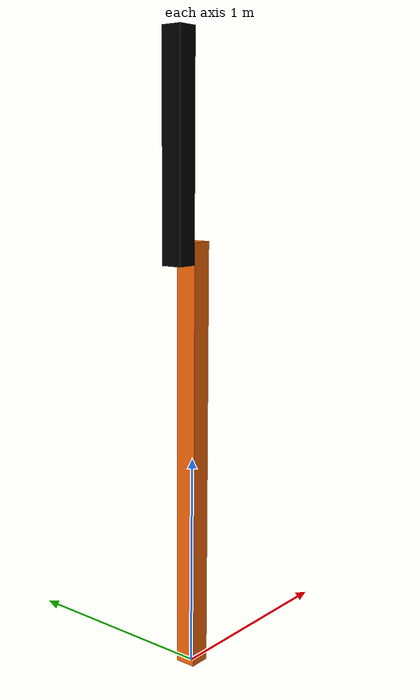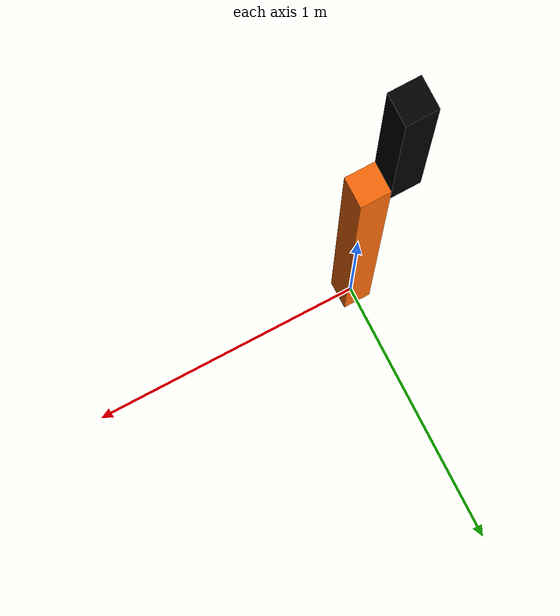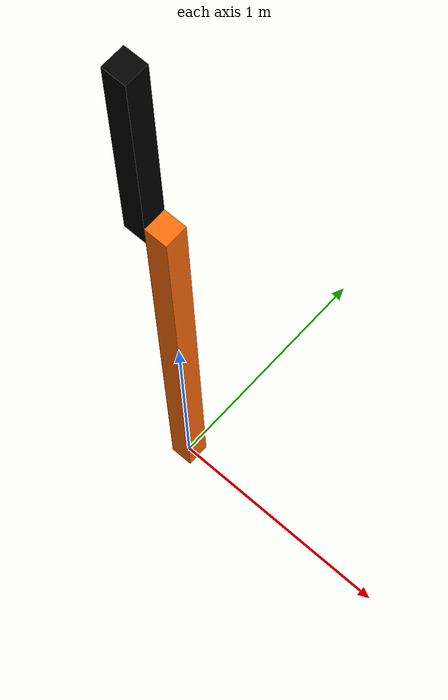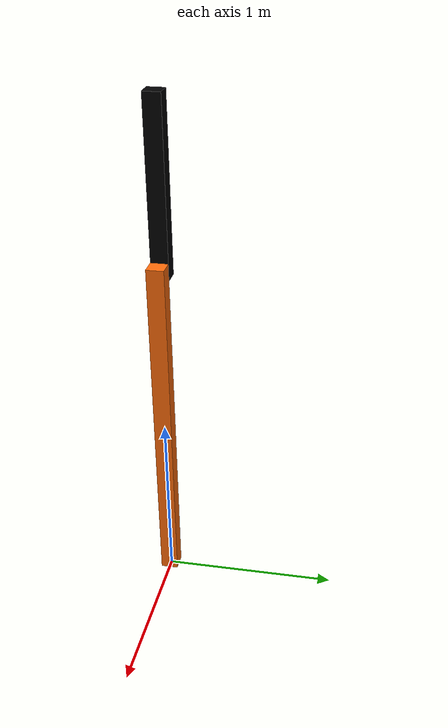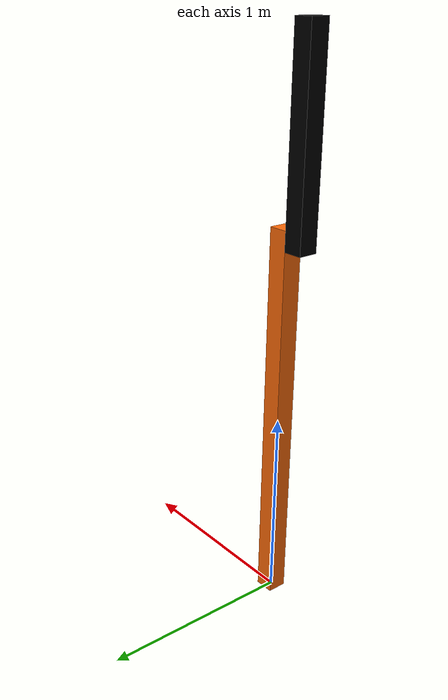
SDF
<?xml version="1.0"?>
<sdf version="1.8">
  <model name='rrbot'>
    <joint name="w2r" type="fixed">
      <parent>world</parent>
      <child>link1</child>
    </joint>
    <link name='link1'>
      <pose>0 0 0 0 -0 1.575</pose>
      <inertial>
        <pose>0 0 1 0 -0 0</pose>
        <mass>1</mass>
        <inertia>
          <ixx>0.334167</ixx>
          <ixy>0</ixy>
          <ixz>0</ixz>
          <iyy>0.334167</iyy>
          <iyz>0</iyz>
          <izz>0.00166667</izz>
        </inertia>
      </inertial>
      <collision name='link1_collision'>
        <pose>0 0 1 0 -0 0</pose>
        <geometry>
          <box>
            <size>0.1 0.1 2</size>
          </box>
        </geometry>
      </collision>
      <visual name='link1_visual'>
        <pose>0 0 1 0 -0 0</pose>
        <geometry>
          <box>
            <size>0.1 0.1 2</size>
          </box>
        </geometry>
        <material>
          <diffuse> 1 0.423529412 0.039215686 1</diffuse>
          <ambient> 1 0.423529412 0.039215686 1</ambient>
          <specular>1 0.423529412 0.039215686 1</specular>
        </material>
      </visual>
    </link>
    <joint name='joint1' type='revolute'>
      <pose relative_to='link1'>0 0.1 1.95 0 -0 0</pose>
      <parent>link1</parent>
      <child>link2</child>
      <axis>
        <xyz>0 1 0</xyz>
        <limit>
          <lower>-1e+16</lower>
          <upper>1e+16</upper>
          <effort>1000</effort>
        </limit>
        <dynamics>
          <damping>1.0</damping>
          <friction>0.0</friction>
          <spring_reference>0</spring_reference>
          <spring_stiffness>0</spring_stiffness>
        </dynamics>
      </axis>
    </joint>
    <link name='link2'>
      <pose relative_to='joint1'>0 0 0 0 -0 0</pose>
      <inertial>
        <pose>0 0 0.45 0 -0 0</pose>
        <mass>1</mass>
        <inertia>
          <ixx>0.0841667</ixx>
          <ixy>0</ixy>
          <ixz>0</ixz>
          <iyy>0.0841667</iyy>
          <iyz>0</iyz>
          <izz>0.00166667</izz>
        </inertia>
      </inertial>
      <collision name='link2_collision'>
        <pose>0 0 0.45 0 -0 0</pose>
        <geometry>
          <box>
            <size>0.1 0.1 1</size>
          </box>
        </geometry>
      </collision>
      <visual name='link2_visual'>
        <pose>0 0 0.45 0 -0 0</pose>
        <geometry>
          <box>
            <size>0.1 0.1 1</size>
          </box>
        </geometry>
        <material>
          <diffuse> 0 0 0 1</diffuse>
          <ambient> 0 0 0 1</ambient>
          <specular>0 0 0 1</specular>
        </material>
      </visual>
      <sensor name="imu_sensor" type="imu">
        <always_on>1</always_on>
        <update_rate>1</update_rate>
        <visualize>true</visualize>
        <topic>imu</topic>
      </sensor>
    </link>
    <!--
    gz topic -t "/joint1_cmd" -m gz.msgs.Double -p "data: -1.0"
gz topic -t "/joint1_cmd" -m gz.msgs.Double -p "data: 1.0"
    -->
    <plugin
        filename="gz-sim-joint-position-controller-system"
        name="gz::sim::systems::JointPositionController">
        <joint_name>joint1</joint_name>
        <topic>joint1_cmd</topic>
        <p_gain>0.05</p_gain>
        <i_gain>0.0</i_gain>
        <d_gain>5</d_gain>
        <i_max>1</i_max>
        <i_min>-1</i_min>
        <cmd_max>10</cmd_max>
        <cmd_min>-10</cmd_min>
      </plugin>

    <!-- Force mode -->

  </model>
</sdf>
